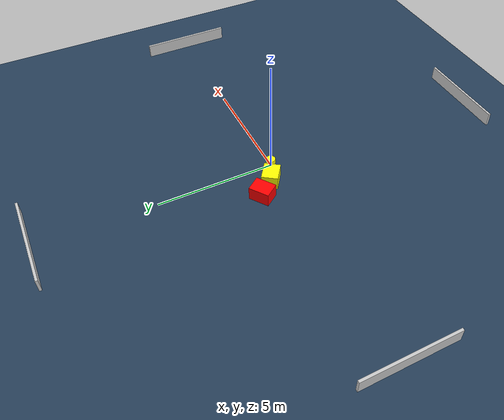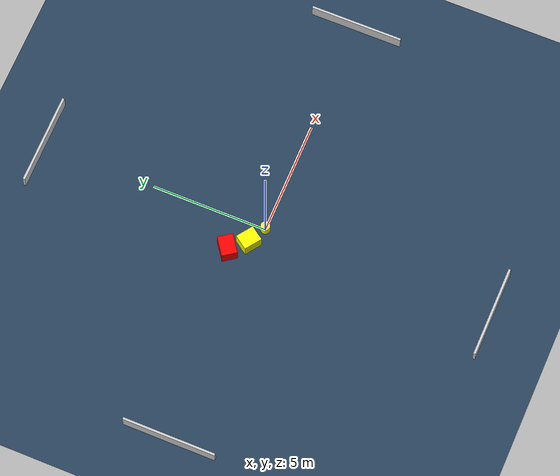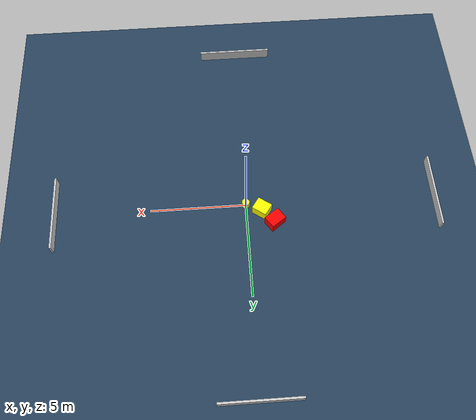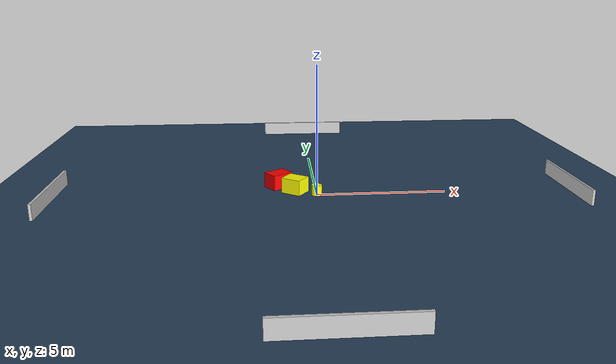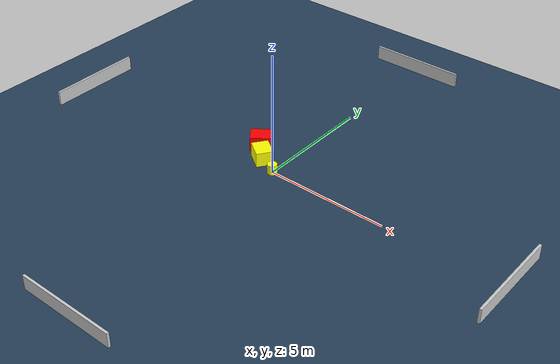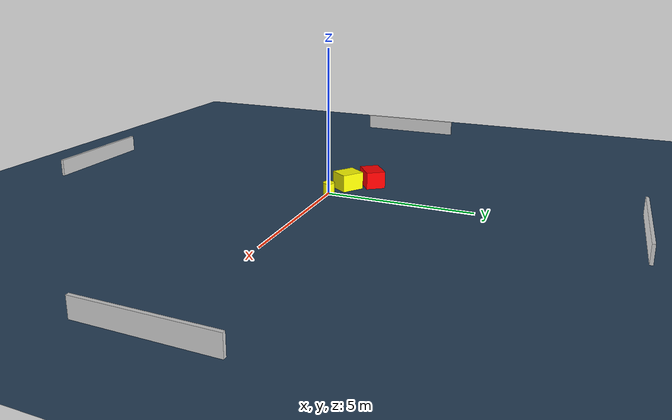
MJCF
<?xml version="1.0" ?>
<mujoco model="generated_environment">
  <option timestep="0.01" integrator="RK4" cone="elliptic"/>
  <default>
    <geom density="1"/>
  </default>
  <asset>
    <texture builtin="gradient" height="3072" name="skybox" rgb1="0.3 0.5 0.7" rgb2="0 0 0" type="skybox" width="512"/>
    <texture builtin="checker" height="300" name="groundplane" rgb1="0.2 0.3 0.4" rgb2="0.1 0.2 0.3" type="2d" width="300"/>
    <material name="groundplane" reflectance="0.2" texrepeat="5 5" texture="groundplane"/>
  </asset>
  <worldbody>
    <light dir="0 0 -1" directional="true" pos="0 0 1.5"/>
    <geom condim="3" friction="0.5 0.005 0.001" material="groundplane" name="floor" pos="0 0 0" size="0 0 0.05" type="plane"/>
    <body name="walls">
      <geom name="wall_1" condim="4" pos="-10.0 0.0 0.3" rgba="0.800000011920929 0.800000011920929 0.800000011920929 1.0" size="0.05 2.0 0.3" type="box"/>
      <geom name="wall_2" condim="4" pos="10.0 0.0 0.3" rgba="0.800000011920929 0.800000011920929 0.800000011920929 1.0" size="0.05 2.0 0.3" type="box"/>
      <geom name="wall_3" condim="4" pos="0.0 -10.0 0.3" rgba="0.800000011920929 0.800000011920929 0.800000011920929 1.0" size="2.0 0.05 0.3" type="box"/>
      <geom name="wall_4" condim="4" pos="0.0 10.0 0.3" rgba="0.800000011920929 0.800000011920929 0.800000011920929 1.0" size="2.0 0.05 0.3" type="box"/>
    </body>
    <body name="robot">
      <joint name="joint_x" type="slide" pos="0 0 0" axis="1 0 0"/>
      <joint name="joint_y" type="slide" pos="0 0 0" axis="0 1 0"/>
      <geom name="robot" type="cylinder" pos="0.0 0.0 0.2" size="0.2 0.2 0.0" mass="5.0" friction="1.0 0.005 0.0001" condim="4" rgba="1.0 1.0 0.0 1.0"/>
    </body>
    <body name="obstacle_1_movable">
      <geom name="obstacle_1_movable" condim="4" pos="-0.8206389036212943 0.389871943499522 0.3" euler="0 0 144.94077933159892" friction="0.0 0.005 0.001" rgba="1.0 1.0 0.0 1.0" size="0.4051142837117305 0.34097010734814454 0.3" type="box" mass="0.1"/>
      <joint type="free"/>
    </body>
    <body name="obstacle_2_static">
      <geom name="obstacle_2_static" condim="4" pos="-1.4546017102709883 1.0848505795207823 0.3" euler="0 0 35.761444131796566" friction="0.0 0.005 0.001" rgba="1.0 0.0 0.0 1.0" size="0.4378831223763434 0.3322464692499267 0.3" type="box"/>
    </body>
  </worldbody>
  <actuator>
    <motor name="actuator_x" joint="joint_x" gear="1" ctrlrange="-1 1"/>
    <motor name="actuator_y" joint="joint_y" gear="1" ctrlrange="-1 1"/>
  </actuator>
</mujoco>
